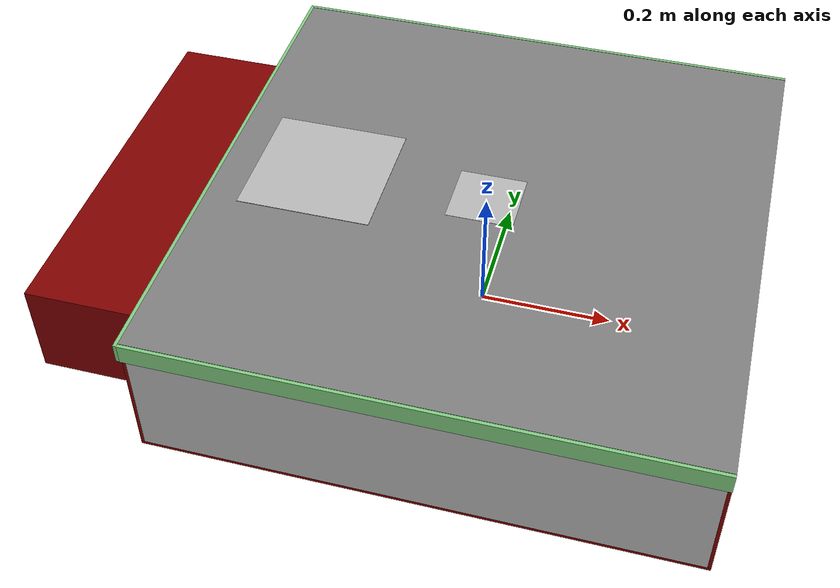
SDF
<?xml version="1.0"?>
<sdf version="1.5">
  <model name="droneport">
    <static>false</static>

    <link name="base_link">
      <inertial>
        <mass>15.6</mass>
        <pose>0 0 0</pose>
        <inertia>
          <ixx>3.328130000000001</ixx>
          <ixy>0.00.0</ixy>
          <ixz>0.00.0</ixz>
          <iyy>3.328130000000001</iyy>
          <iyz>0.00.0</iyz>
          <izz>6.6560000000000015</izz>
        </inertia>
      </inertial>
      <collision name="collision">
        <geometry>
          <box>

            <size>0.80 0.80 0.005</size>
          </box>
        </geometry>
        <surface>
          <contact>
            <ode>
              <max_vel>0</max_vel>
              <min_depth>0.001</min_depth>
            </ode>
          </contact>
          <friction>
            <ode>
              <mu>100</mu>
              <mu2>50</mu2>
            </ode>
          </friction>
        </surface>
      </collision>
      <visual name="visual">
        <geometry>
          <box>
            <size>0.80 0.80 0.005</size>
          </box>
        </geometry>
        <material>
          <ambient>0.5 0.0 0.0 1</ambient>
          <diffuse>0.5 0.0 0.0 1</diffuse>
          <specular>0 0 0 0</specular>
          <emissive>0 0 0 0</emissive>
        </material>
      </visual>
    </link>

    <link name="left_side">
      <pose>0 -0.3975 0.1025 0 0 0 </pose>
      <inertial>
        <mass>3.84</mass>
        <pose>0 0 0</pose>
        <inertia>
          <ixx>0.05123200000000001</ixx>
          <ixy>0.0</ixy>
          <ixz>0.0</ixz>
          <iyy>0.8704000000000002</iyy>
          <iyz>0.0</iyz>
          <izz>6.400000000000001e-05</izz>
        </inertia>
      </inertial>
      <collision name="collision">
        <geometry>
          <box>

            <size>0.79 0.005 0.2</size>
          </box>
        </geometry>
        <surface>
          <friction>
            <contact>
              <ode>
                <max_vel>0</max_vel>
                <min_depth>0.001</min_depth>
              </ode>
            </contact>
            <ode>
              <mu>100</mu>
              <mu2>50</mu2>
            </ode>
          </friction>
        </surface>
      </collision>
      <visual name="visual">
        <geometry>
          <box>
            <size>0.79 0.005 0.2</size>
          </box>
        </geometry>
        <material>
          <script>
            <uri>model://droneport_new/materials/scripts/droneport_sticker.material</uri>
            <name>DronePort1Sticker</name>
          </script>
        </material>
      </visual>
    </link>

    <link name="front_side">
      <pose>-0.3975 0 0.1025 0 0 0 </pose>
      <inertial>
        <mass>3.84</mass>
        <pose>0 0 0</pose>
        <inertia>
          <ixx>0.8704000000000002</ixx>
          <ixy>0.0</ixy>
          <ixz>0.0</ixz>
          <iyy>0.05123200000000001</iyy>
          <iyz>0.0</iyz>
          <izz>1.6384000000000003</izz>
        </inertia>
      </inertial>
      <collision name="collision">
        <geometry>
          <box>

            <size>0.005 0.80 0.2</size>
          </box>
        </geometry>
        <surface>
          <contact>
            <ode>
              <max_vel>0</max_vel>
              <min_depth>0.001</min_depth>
            </ode>
          </contact>
          <friction>
            <ode>
              <mu>100</mu>
              <mu2>50</mu2>
            </ode>
          </friction>
        </surface>
      </collision>
      <visual name="visual">
        <geometry>
          <box>
            <size>0.005 0.80 0.2</size>
          </box>
        </geometry>
        <material>
          <ambient>0.5 0.0 0.0 1</ambient>
          <diffuse>0.5 0.0 0.0 1</diffuse>
          <specular>0 0 0 0</specular>
          <emissive>0 0 0 0</emissive>
        </material>
      </visual>
    </link>

    <link name="back_side">
      <pose>0.3975 0 0.1025 0 0 0 </pose>
      <inertial>
        <mass>3.84</mass>
        <pose>0 0 0</pose>
        <inertia>
          <ixx>0.8704000000000002</ixx>
          <ixy>0.0</ixy>
          <ixz>0.0</ixz>
          <iyy>0.05123200000000001</iyy>
          <iyz>0.0</iyz>
          <izz>1.6384000000000003</izz>
        </inertia>
      </inertial>
      <collision name="collision">
        <geometry>
          <box>

            <size>0.005 0.80 0.2</size>
          </box>
        </geometry>
        <surface>
          <contact>
            <ode>
              <max_vel>0</max_vel>
              <min_depth>0.001</min_depth>
            </ode>
          </contact>
          <friction>
            <ode>
              <mu>100</mu>
              <mu2>50</mu2>
            </ode>
          </friction>
        </surface>
      </collision>
      <visual name="visual">
        <geometry>
          <box>
            <size>0.005 0.80 0.2</size>
          </box>
        </geometry>
        <material>
          <ambient>0.5 0.0 0.0 1</ambient>
          <diffuse>0.5 0.0 0.0 1</diffuse>
          <specular>0 0 0 0</specular>
          <emissive>0 0 0 0</emissive>
        </material>
      </visual>
    </link>

    <link name="right_side">
      <pose>0 0.3975 0.1025 0 0 0 </pose>
      <inertial>
        <mass>3.84</mass>
        <pose>0 0 0</pose>
        <inertia>
          <ixx>0.05123200000000001</ixx>
          <ixy>0.0</ixy>
          <ixz>0.0</ixz>
          <iyy>0.8704000000000002</iyy>
          <iyz>0.0</iyz>
          <izz>6.400000000000001e-05</izz>
        </inertia>
      </inertial>
      <collision name="collision">
        <geometry>
          <box>
            <size>0.80 0.005 0.2</size>
          </box>
        </geometry>
        <surface>
          <contact>
            <ode>
              <max_vel>0</max_vel>
              <min_depth>0.001</min_depth>
            </ode>
          </contact>
          <friction>
            <ode>
              <mu>100</mu>
              <mu2>50</mu2>
            </ode>
          </friction>
        </surface>
      </collision>
      <visual name="visual">
        <geometry>
          <box>
            <size>0.80 0.005 0.2</size>
          </box>
        </geometry>
        <material>
          <ambient>0.5 0.0 0.0 1</ambient>
          <diffuse>0.5 0.0 0.0 1</diffuse>
          <specular>0 0 0 0</specular>
          <emissive>0 0 0 0</emissive>
        </material>
      </visual>
    </link>

    <link name="box_with_electronics">
      <pose>-0.50 0 0.0725 0 0 0 </pose>
      <inertial>
        <mass>11.52</mass>
        <pose>0 0 0</pose>
        <inertia>
          <ixx>1.4687999999999999</ixx>
          <ixy>0.0</ixy>
          <ixz>0.0</ixz>
          <iyy>0.24</iyy>
          <iyz>0.0</iyz>
          <izz>2.7647999999999997"</izz>
        </inertia>
      </inertial>
      <collision name="collision">
        <geometry>
          <box>
            <size>0.20 0.60 0.15</size>
          </box>
        </geometry>
        <surface>
          <contact>
            <ode>
              <max_vel>0</max_vel>
              <min_depth>0.001</min_depth>
            </ode>
          </contact>
          <friction>
            <ode>
              <mu>100</mu>
              <mu2>50</mu2>
            </ode>
          </friction>
        </surface>
      </collision>
      <visual name="visual">
        <geometry>
          <box>
            <size>0.20 0.60 0.15</size>
          </box>
        </geometry>
        <material>
          <ambient>0.5 0.0 0.0 1</ambient>
          <diffuse>0.5 0.0 0.0 1</diffuse>
          <specular>0 0 0 0</specular>
          <emissive>0 0 0 0</emissive>
        </material>
      </visual>
    </link>

    <link name="cover">
      <pose>0 0 0.2050 0 0 0 </pose>
      <inertial>
        <mass>15.6</mass>
        <pose>0 0 0</pose>
        <inertia>
          <ixx>3.328130000000001</ixx>
          <ixy>0.0</ixy>
          <ixz>0.0</ixz>
          <iyy>3.328130000000001</iyy>
          <iyz>0.0</iyz>
          <izz>6.6560000000000015</izz>
        </inertia>
      </inertial>
      <collision name="collision">
        <geometry>
          <box>

            <size>0.80 0.81 0.005</size>
          </box>
        </geometry>
        <surface>
          <contact>
            <ode>
              <max_vel>0</max_vel>
              <min_depth>0.001</min_depth>
            </ode>
          </contact>
          <friction>
            <ode>
              <mu>100</mu>
              <mu2>50</mu2>
            </ode>
          </friction>
        </surface>
      </collision>
      <visual name="visual">
        <geometry>
          <box>
            <size>0.80 0.80 0.005</size>
          </box>
        </geometry>
        <material>
          <ambient>0.5 0.5 0.5 1</ambient>
          <diffuse>0.5 0.5 0.5 1</diffuse>
          <specular>0 0 0 0</specular>
          <emissive>0 0 0 0</emissive>
        </material>
      </visual>
    </link>

    <link name="cover_back">
      <pose> -0.4025 0 0.1925 0 0 0 </pose>
      <inertial>
        <mass>0.58</mass>
        <pose>0 0 0</pose>
        <inertia>
          <ixx>0.1270200000000000</ixx>
          <ixy>0.0</ixy>
          <ixz>0.0</ixz>
          <iyy>0.0001788333333333333</iyy>
          <iyz>0.0</iyz>
          <izz>0.25369200000000003</izz>
        </inertia>
      </inertial>
      <collision name="collision">
        <geometry>
          <box>
            <size>0.005 0.81 0.03</size>
          </box>
        </geometry>
        <surface>
          <friction>
            <ode>
              <mu>100</mu>
              <mu2>50</mu2>
            </ode>
          </friction>
        </surface>
      </collision>
      <visual name="visual">
        <geometry>
          <box>
            <size>0.005 0.81 0.03</size>
          </box>
        </geometry>
        <material>
          <ambient>0.5 0.8 0.5 1</ambient>
          <diffuse>0.5 0.8 0.5 1</diffuse>
          <specular>0 0 0 0</specular>
          <emissive>0 0 0 0</emissive>
        </material>
      </visual>
    </link>

    <link name="cover_left">
      <pose> 0 -0.4030 0.1925 0 0 0 </pose>
      <inertial>
        <mass>0.576</mass>
        <pose>0 0 0</pose>
        <inertia>
          <ixx>0.00017759999999999995</ixx>
          <ixy>0.0</ixy>
          <ixz>0.0</ixz>
          <iyy>0.12305280000000002</iyy>
          <iyz>0.0</iyz>
          <izz>9.6e-06</izz>
        </inertia>
      </inertial>
      <collision name="collision">
        <geometry>
          <box>
            <size> 0.80 0.005 0.03</size>
          </box>
        </geometry>
        <surface>
          <friction>
            <ode>
              <mu>100</mu>
              <mu2>50</mu2>
            </ode>
          </friction>
        </surface>
      </collision>
      <visual name="visual">
        <geometry>
          <box>
            <size> 0.80 0.005 0.03</size>
          </box>
        </geometry>
        <material>
          <ambient>0.5 0.8 0.5 1</ambient>
          <diffuse>0.5 0.8 0.5 1</diffuse>
          <specular>0 0 0 0</specular>
          <emissive>0 0 0 0</emissive>
        </material>
      </visual>
    </link>

    <link name="cover_right">
      <pose> 0 0.4030 0.1925 0 0 0 </pose>
      <inertial>
        <mass>0.576</mass>
        <pose>0 0 0</pose>
        <inertia>
          <ixx>0.00017759999999999995</ixx>
          <ixy>0.0</ixy>
          <ixz>0.0</ixz>
          <iyy>0.12305280000000002</iyy>
          <iyz>0.0</iyz>
          <izz>9.6e-06</izz>
        </inertia>
      </inertial>
      <collision name="collision">
        <geometry>
          <box>
            <size> 0.80 0.005 0.03</size>
          </box>
        </geometry>
        <surface>
          <friction>
            <ode>
              <mu>100</mu>
              <mu2>50</mu2>
            </ode>
          </friction>
        </surface>
      </collision>
      <visual name="visual">
        <geometry>
          <box>
            <size> 0.80 0.005 0.03</size>
          </box>
        </geometry>
        <material>
          <ambient>0.5 0.8 0.5 1</ambient>
          <diffuse>0.5 0.8 0.5 1</diffuse>
          <specular>0 0 0 0</specular>
          <emissive>0 0 0 0</emissive>
        </material>
      </visual>
    </link>

    <link name="aruco_surface">
      <pose>0.0 0.0 0.2076 0 0 0 </pose>
      <inertial>
        <mass>0.08</mass>
        <pose>0 0 0</pose>
        <inertia>
          <ixx>0.0006000066666666667</ixx>
          <ixy>0.0</ixy>
          <ixz>0.0</ixz>
          <iyy>0.0006000066666666667</iyy>
          <iyz>0.0</iyz>
          <izz>0.0012000000000000001</izz>
        </inertia>
      </inertial>
      <collision name="collision">
        <geometry>
          <box>
            <size>0.1 0.1 0.0001</size>
          </box>
        </geometry>
        <surface>
          <friction>
            <ode>
              <mu>100</mu>
              <mu2>50</mu2>
            </ode>
          </friction>
        </surface>
      </collision>
      <visual name="visual2">
        <cast_shadows>true</cast_shadows>
        <geometry>
          <box>
            <size>0.1 0.1 0.0001</size>
          </box>
        </geometry>
        <material>
          <script>
            <uri>model://droneport_new/materials/scripts/droneport.material</uri>
            <name>DronePort1SmallAruco</name>
          </script>
        </material>
      </visual>
    </link>

    <link name="aruco_surface_2">
      <pose>-0.25 0.0 0.2078 0 0 0 </pose>
      <inertial>
        <mass>0.08</mass>
        <pose>0 0 0</pose>
        <inertia>
          <ixx>0.0006000066666666667</ixx>
          <ixy>0.0</ixy>
          <ixz>0.0</ixz>
          <iyy>0.0006000066666666667</iyy>
          <iyz>0.0</iyz>
          <izz>0.0012000000000000001</izz>
        </inertia>
      </inertial>
      <collision name="collision">
        <geometry>
          <box>
            <size>0.2 0.2 0.0001</size>
          </box>
        </geometry>
        <surface>
          <friction>
            <ode>
              <mu>100</mu>
              <mu2>50</mu2>
            </ode>
          </friction>
        </surface>
      </collision>
      <visual name="visual2">
        <cast_shadows>true</cast_shadows>
        <geometry>
          <box>
            <size>0.2 0.2 0.001</size>
          </box>
        </geometry>
        <material>
          <script>
            <uri>model://droneport_new/materials/scripts/droneport.material</uri>
            <name>DronePort1LargeAruco</name>
          </script>
          <light type="directional" name="some_light">
            <diffuse>1.0 1.0 1.0 0</diffuse>
            <specular>1 1 1 0</specular>
            <direction>-1 -1 -1</direction>

          </light>
        </material>
      </visual>
    </link>

    <link name="battery0">
      <pose>-0.300 -0.350 0.025 0 0 0</pose>
      <collision name="collision">
        <geometry>
          <box>
            <size>0.15 0.05 0.04</size>
          </box>
        </geometry>
      </collision>
      <visual name="visual_battery0">
        <geometry>
          <box>
            <size>0.15 0.05 0.04</size>
          </box>
        </geometry>
        <material>
          <script>
            <uri>file://media/materials/scripts/gazebo.material</uri>
            <name>Gazebo/Blue</name>
          </script>
        </material>
      </visual>
    </link>

    <link name="battery1">
      <pose>-0.300 -0.250 0.025 0 0 0</pose>
      <collision name="collision">
        <geometry>
          <box>
            <size>0.15 0.05 0.04</size>
          </box>
        </geometry>
      </collision>
      <visual name="visual_battery1">
        <geometry>
          <box>
            <size>0.15 0.05 0.04</size>
          </box>
        </geometry>
        <material>
          <script>
            <uri>file://media/materials/scripts/gazebo.material</uri>
            <name>Gazebo/Blue</name>
          </script>
        </material>
      </visual>
    </link>

    <link name="battery2">
      <pose>-0.300 -0.150 0.025 0 0 0</pose>
      <collision name="collision">
        <geometry>
          <box>
            <size>0.15 0.05 0.04</size>
          </box>
        </geometry>
      </collision>
      <visual name="visual_battery2">
        <geometry>
          <box>
            <size>0.15 0.05 0.04</size>
          </box>
        </geometry>
        <material>
          <script>
            <uri>file://media/materials/scripts/gazebo.material</uri>
            <name>Gazebo/Blue</name>
          </script>
        </material>
      </visual>
    </link>

    <link name="battery3">
      <pose>-0.300 -0.050 0.025 0 0 0</pose>
      <collision name="collision">
        <geometry>
          <box>
            <size>0.15 0.05 0.04</size>
          </box>
        </geometry>
      </collision>
      <visual name="visual_battery3">
        <geometry>
          <box>
            <size>0.15 0.05 0.04</size>
          </box>
        </geometry>
        <material>
          <script>
            <uri>file://media/materials/scripts/gazebo.material</uri>
            <name>Gazebo/Blue</name>
          </script>
        </material>
      </visual>
    </link>

    <joint name="base_link_to_left_side" type="fixed">
      <parent>base_link</parent>
      <child>left_side</child>
      <pose>0 0 0 0 0 0</pose>
      <axis>
        <xyz>0 0 1</xyz>
      </axis>
    </joint>

    <joint name="base_link_to_right_side" type="fixed">
      <parent>base_link</parent>
      <child>right_side</child>
      <pose>0 0 0 0 0 0</pose>
      <axis>
        <xyz>0 0 1</xyz>
      </axis>
    </joint>

    <joint name="base_link_to_front_side" type="fixed">
      <parent>base_link</parent>
      <child>front_side</child>
      <pose>0 0 0 0 0 0</pose>
      <axis>
        <xyz>0 0 1</xyz>
      </axis>
    </joint>

    <joint name="base_link_to_back_side" type="fixed">
      <parent>base_link</parent>
      <child>back_side</child>
      <pose>0 0 0 0 0 0</pose>
      <axis>
        <xyz>0 0 1</xyz>
      </axis>
    </joint>

    <joint name="front_side_to_box_with_electronics" type="fixed">
      <parent>front_side</parent>
      <child>box_with_electronics</child>
      <pose>0 0 0 0 0 0</pose>
      <axis>
        <xyz>0 0 1</xyz>
      </axis>
    </joint>

    <joint name="front_side_to_cover" type="prismatic">
      <parent>front_side</parent>
      <child>cover</child>
      <pose>0 0 0 0 0 0</pose>
      <axis>
        <limit>
          <effort>10000</effort>
          <lower>-0.80</lower>
          <upper>0.0</upper>
        </limit>
        <dynamics>
          <friction>14.50</friction>
        </dynamics>
        <xyz>1 0 0</xyz>
      </axis>
    </joint>

    <joint name="cover_to_cover_back" type="fixed">
      <parent>cover</parent>
      <child>cover_back</child>
      <pose>0 0 0 0 0 0</pose>
      <axis>
        <xyz>0 0 1</xyz>
      </axis>
    </joint>

    <joint name="cover_to_cover_right" type="fixed">
      <parent>cover</parent>
      <child>cover_right</child>
      <pose>0 0 0 0 0 0</pose>
      <axis>
        <xyz>0 0 1</xyz>
      </axis>
    </joint>

    <joint name="cover_to_cover_left" type="fixed">
      <parent>cover</parent>
      <child>cover_left</child>
      <pose>0 0 0 0 0 0</pose>
      <axis>
        <xyz>0 0 1</xyz>
      </axis>
    </joint>

    <joint name="cover_to_aruco" type="fixed">
      <parent>cover</parent>
      <child>aruco_surface</child>
      <pose>0 0 0 0 0 0</pose>
      <axis>
        <xyz>0 0 1</xyz>
      </axis>
    </joint>

    <joint name="cover_to_aruco_2" type="fixed">
      <parent>cover</parent>
      <child>aruco_surface_2</child>
      <pose>0 0 0 0 0 0</pose>
      <axis>
        <xyz>0 0 1</xyz>
      </axis>
    </joint>

    <joint name="base_link_to_battery0" type="fixed">
      <parent>base_link</parent>
      <child>battery0</child>
      <pose>0 0 0 0 0 0</pose>
      <axis>
        <xyz>0 0 1</xyz>
      </axis>
    </joint>

    <joint name="base_link_to_battery1" type="fixed">
      <parent>base_link</parent>
      <child>battery1</child>
      <pose>0 0 0 0 0 0</pose>
      <axis>
        <xyz>0 0 1</xyz>
      </axis>
    </joint>

    <joint name="base_link_to_battery2" type="fixed">
      <parent>base_link</parent>
      <child>battery2</child>
      <pose>0 0 0 0 0 0</pose>
      <axis>
        <xyz>0 0 1</xyz>
      </axis>
    </joint>

    <joint name="base_link_to_battery3" type="fixed">
      <parent>base_link</parent>
      <child>battery3</child>
      <pose>0 0 0 0 0 0</pose>
      <axis>
        <xyz>0 0 1</xyz>
      </axis>
    </joint>

    <plugin name='droneport_plugin' filename='libgazebo_droneport_plugin.so'>
      <robotNamespace />
      <mavlink_addr>INADDR_ANY</mavlink_addr>
      <mavlink_tcp_port>4561</mavlink_tcp_port>
      <mavlink_udp_port>14750</mavlink_udp_port>
      <number_of_ports_for_batteries>4</number_of_ports_for_batteries>
      <TgtSystemID>201</TgtSystemID>
      <TgtComponentID>1</TgtComponentID>
      <use_tcp>0</use_tcp>
    </plugin>

    <model name='gps0'>
      <link name='link'>
        <pose>0 0 0 0 0 0</pose>
        <inertial>
          <pose>0 0 0 0 0 0</pose>
          <mass>0.01</mass>
          <inertia>
            <ixx>2.1733e-06</ixx>
            <ixy>0</ixy>
            <ixz>0</ixz>
            <iyy>2.1733e-06</iyy>
            <iyz>0</iyz>
            <izz>1.8e-07</izz>
          </inertia>
        </inertial>
        <visual name='visual'>
          <geometry>
            <cylinder>
              <radius>0.01</radius>
              <length>0.002</length>
            </cylinder>
          </geometry>
          <material>
            <script>
              <name>Gazebo/Black</name>
              <uri>__default__</uri>
            </script>
          </material>
        </visual>
        <sensor name='gps' type='gps'>
          <pose>0 0 0 0 0 0</pose>
          <plugin name='gps_plugin' filename='libgazebo_gps_plugin.so'>
            <robotNamespace />
            <gpsNoise>1</gpsNoise>
            <gpsXYRandomWalk>2.0</gpsXYRandomWalk>
            <gpsZRandomWalk>4.0</gpsZRandomWalk>
            <gpsXYNoiseDensity>0.0002</gpsXYNoiseDensity>
            <gpsZNoiseDensity>0.0004</gpsZNoiseDensity>
            <gpsVXYNoiseDensity>0.2</gpsVXYNoiseDensity>
            <gpsVZNoiseDensity>0.4</gpsVZNoiseDensity>
          </plugin>
        </sensor>
      </link>
    </model>
    <joint name='gps0_joint' type='fixed'>
      <parent>base_link</parent>
      <child>gps0::link</child>
    </joint>

  </model>
</sdf>
